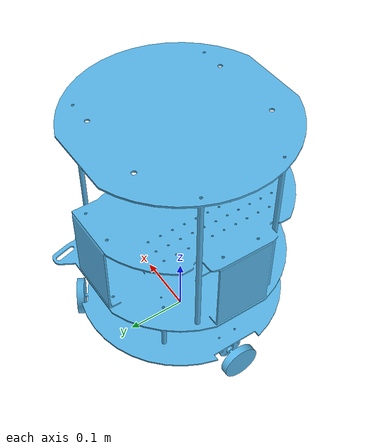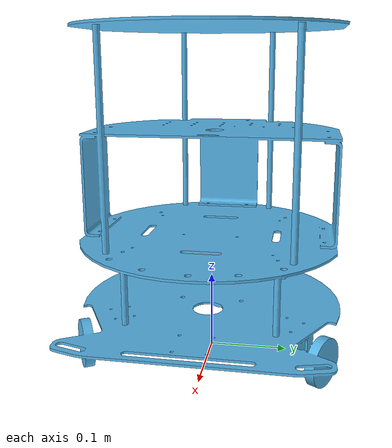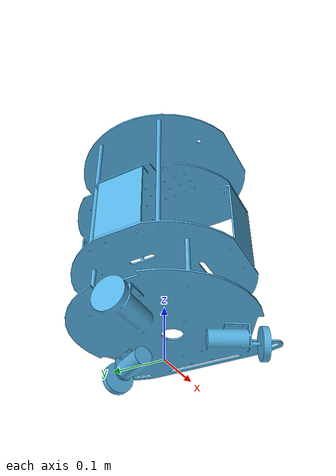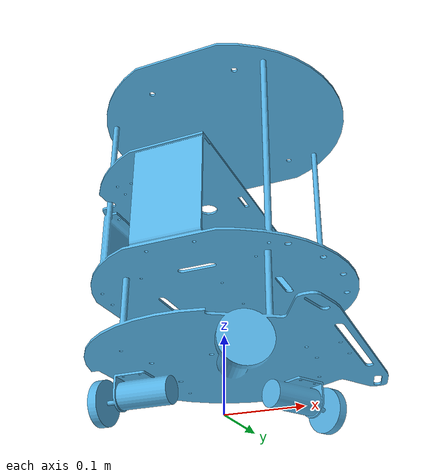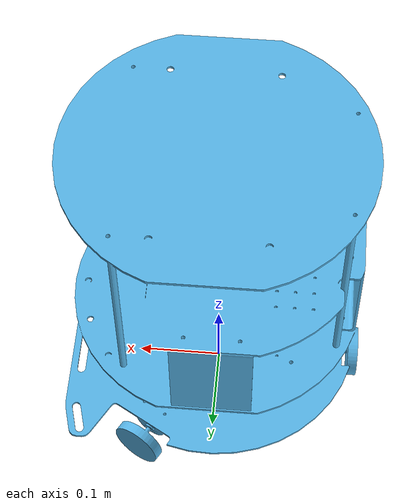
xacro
<?xml version="1.0"?>
<!--
  Author: corvin
  Description: this is carebot stack urdf file
  Date: 20171222-init file;
-->

<robot name="carebot" xmlns:xacro="http://ros.org/wiki/xacro">

 <link name="base_footprint"/>
    <joint name="base_joint" type="fixed">
      <origin xyz="0 0 0.0102" rpy="0 0 0" />
      <parent link="base_footprint"/>
      <child link="base_link" />
    </joint>
    <link name="base_link">
      <visual>
        <geometry>
          <!-- new mesh -->
          <mesh filename="package://carebot_description/meshes/base_link.STL" />
        </geometry>
        <origin xyz="0.001 0 0.05199" rpy="0 0 0"/>
      </visual>
      <collision name="base">
        <geometry>
          <cylinder length="0.10938" radius="0.178"/>
        </geometry>
        <origin xyz="0.0 0 0.05949" rpy="0 0 0"/>
      </collision>
      <inertial>
        <!-- COM experimentally determined -->
        <origin xyz="0.01 0 0"/>
        <mass value="2.4"/> <!-- 2.4/2.6 kg for small/big battery pack -->
        <inertia ixx="0.019995" ixy="0.0" ixz="0.0"
                 iyy="0.019995" iyz="0.0"
                 izz="0.03675" />
      </inertial>
    </link>

</robot>
